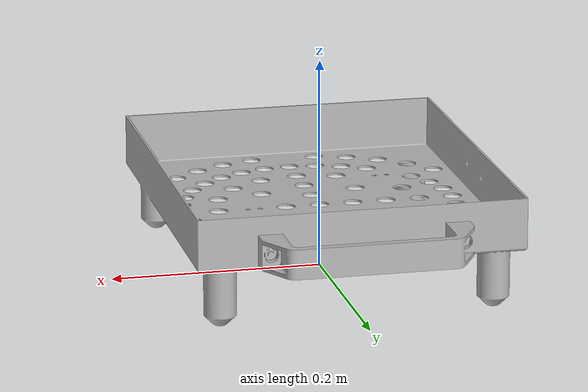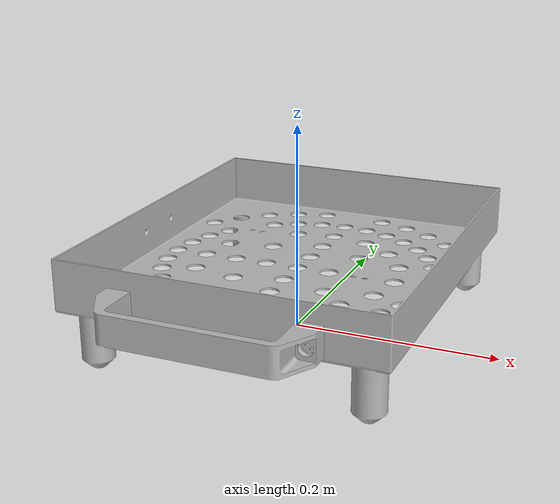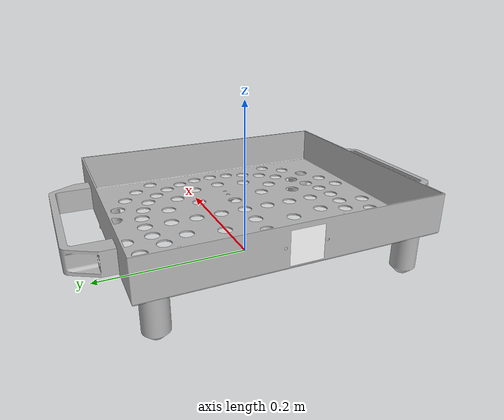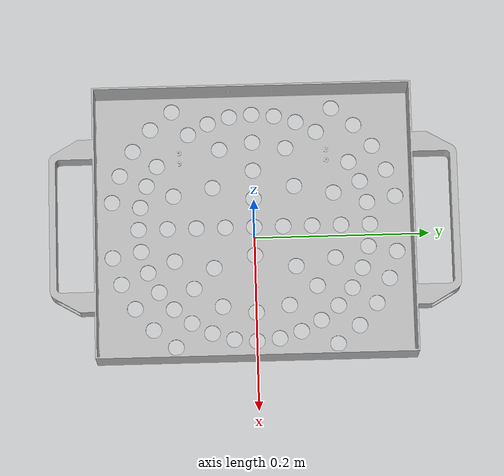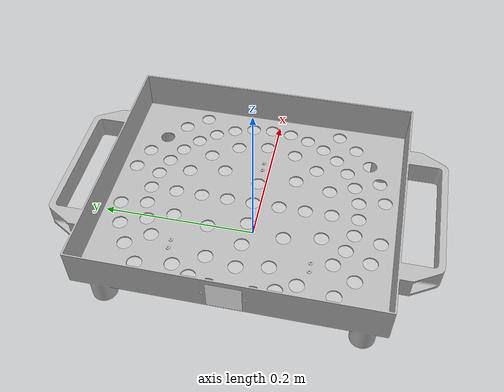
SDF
<?xml version='1.0'?>
<sdf version='1.6'>
  <model name='CSSD Tray 1'>
    <allow_auto_disable>0</allow_auto_disable>
    <static>0</static>

    <include>
      <uri>model://CSSD Tray</uri>
      <name>base</name>
    </include>

    <link name='aruco_tag'>
      <pose> -0.154 0.0 0.0824 0 -1.57 0.0</pose>

      <inertial>
        <mass>0.01</mass>
        <inertia>
          <ixx>0.001</ixx>
          <iyy>0.001</iyy>
          <izz>0.001</izz>
        </inertia>
      </inertial>

      <visual name='marker'>
        <geometry>
          <box>
            <size>0.04 0.04 1e-05</size>
          </box>
        </geometry>
        <material>
          <script>
            <uri>model://aruco_visual_marker_1/materials/scripts</uri>
            <uri>model://aruco_visual_marker_1/materials/textures</uri>
            <name>ArucoVisualMarker1/Marker</name>
          </script>
          <ambient>1 1 1 1</ambient>
          <diffuse>1 1 1 1</diffuse>
          <specular>0 0 0 1</specular>
          <emissive>1 1 1 0</emissive>
          <shader type='vertex'>
            <normal_map>__default__</normal_map>
          </shader>
        </material>
        <cast_shadows>1</cast_shadows>
        <transparency>0</transparency>
      </visual>
    </link>

    <joint name="aruco_tag_joint" type="revolute">
      <parent>base::tray</parent>
      <child>aruco_tag</child>

      <!-- Common hack to make this a "fixed" joint -->
      <axis>
        <limit>
          <lower>0.0</lower>
          <upper>0.0</upper>
        </limit>
      </axis>

    </joint>
  </model>
</sdf>

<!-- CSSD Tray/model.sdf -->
<sdf version="1.6">
  <model name="CSSD Tray">
    <static>false</static>
    <link name="tray">
      <pose> 0 0 0 0 0 3.14 </pose>
       <inertial>
         <!-- tentative mass -->
        <mass>5.5</mass>
        <pose>0 0 0 0 0 0</pose>
        <inertia>
          <ixx>0.1026</ixx>
          <ixy>0</ixy>
          <ixz>0</ixz>
          <iyy>0.206</iyy>
          <iyz>0</iyz>
          <izz>0.155</izz>
        </inertia>
      </inertial>

      <!-- Extents: (+/- 0.15, +/- 0.175, [0.058, 0.06]),  -->
      <collision name="tray floor">
        <pose> 0.0  0.0  0.06  0.0  0.0  0.0</pose>
        <geometry>
          <box>
            <size>0.30 0.35 0.004</size>
          </box>
        </geometry>
      </collision>
      <collision name="tray pegs">
        <geometry>
          <mesh>
            <scale>1 1 1</scale>
            <uri>model://CSSD Tray/meshes/tray_pegs.stl</uri>
          </mesh>
        </geometry>
      </collision>

      <!-- Center Bottom: (0.128, 0.153, 0.01) -->
      <!-- radius: 0.015 -->
      <!-- height: 0.048-->
      <collision name="front left leg">
        <pose>0.128 0.153 0.034 0 0 0</pose>
        <geometry>
          <cylinder>
            <radius>0.015</radius>
            <length>0.048</length>
          </cylinder>
        </geometry>
      </collision>
      <collision name="front right leg">
        <pose>-0.128 0.153 0.034 0 0 0</pose>
        <geometry>
          <cylinder>
            <radius>0.015</radius>
            <length>0.048</length>
          </cylinder>
        </geometry>
      </collision>
      <collision name="back left leg">
        <pose>0.128 -0.153 0.034 0 0 0</pose>
        <geometry>
          <cylinder>
            <radius>0.015</radius>
            <length>0.048</length>
          </cylinder>
        </geometry>
      </collision>
      <collision name="back right leg">
        <pose>-0.128 -0.153 0.034 0 0 0</pose>
        <geometry>
          <cylinder>
            <radius>0.015</radius>
            <length>0.048</length>
          </cylinder>
        </geometry>
      </collision>

      <visual name='visual'>
        <geometry>
          <mesh>
            <scale>1 1 1</scale>
            <uri>model://CSSD Tray/meshes/Tray_Assem_Locating_Stand-off.STL</uri>
          </mesh>
        </geometry>
      </visual>
    </link>
  </model>
</sdf>
